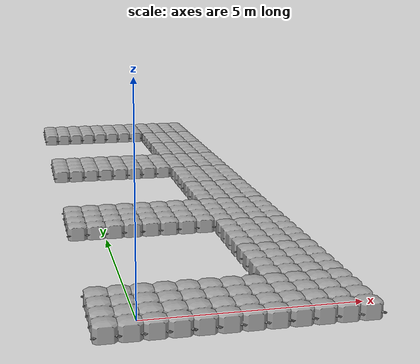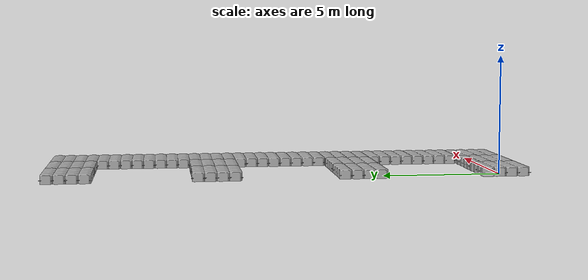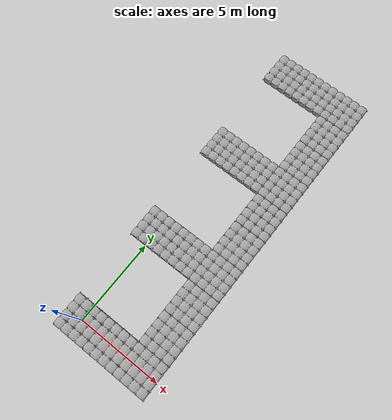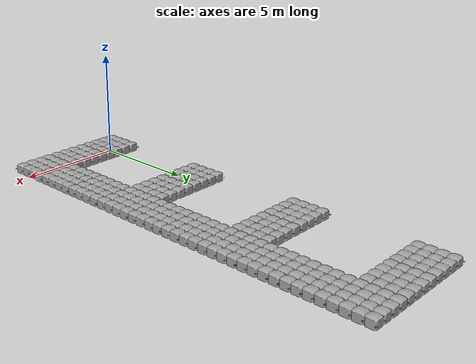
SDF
<?xml version="1.0" ?>
<sdf version="1.6">

  <!-- Important: This file is generated. DO NOT EDIT! -->

  <model name="robotx_dock_2016_base">
    <selfCollide>false</selfCollide>

    <!--
      This is how this dock should look like:

          X  X  X  X          X  X  X  X          XXXXXXXXXX
    -->

    <!-- Row 0 -->
    <include>
      <name>dock_block_0_0</name>
      <pose>0 0 0.25 0 0 0</pose>
        <uri>model://dock_block_4x4_dynamic</uri>
    </include>
    <include>
      <name>dock_block_0_3</name>
      <pose>0 6 0.25 0 0 0</pose>
        <uri>model://dock_block_4x4_dynamic</uri>
    </include>
    <include>
      <name>dock_block_0_6</name>
      <pose>0 12 0.25 0 0 0</pose>
        <uri>model://dock_block_4x4_dynamic</uri>
    </include>
    <include>
      <name>dock_block_0_9</name>
      <pose>0 18 0.25 0 0 0</pose>
        <uri>model://dock_block_4x4_dynamic</uri>
    </include>

    <!-- Row 1 -->
    <include>
      <name>dock_block_1_0</name>
      <pose>2 0 0.25 0 0 0</pose>
        <uri>model://dock_block_4x4_dynamic</uri>
    </include>
    <include>
      <name>dock_block_1_3</name>
      <pose>2 6 0.25 0 0 0</pose>
        <uri>model://dock_block_4x4_dynamic</uri>
    </include>
    <include>
      <name>dock_block_1_6</name>
      <pose>2 12 0.25 0 0 0</pose>
        <uri>model://dock_block_4x4_dynamic</uri>
    </include>
    <include>
      <name>dock_block_1_9</name>
      <pose>2 18 0.25 0 0 0</pose>
        <uri>model://dock_block_4x4_dynamic</uri>
    </include>

    <!-- Row 2 -->
    <include>
      <name>dock_block_2_0</name>
      <pose>4 0 0.25 0 0 0</pose>
        <uri>model://dock_block_4x4_dynamic</uri>
    </include>
    <include>
      <name>dock_block_2_1</name>
      <pose>4 2 0.25 0 0 0</pose>
        <uri>model://dock_block_4x4_dynamic</uri>
    </include>
    <include>
      <name>dock_block_2_2</name>
      <pose>4 4 0.25 0 0 0</pose>
        <uri>model://dock_block_4x4_dynamic</uri>
    </include>
    <include>
      <name>dock_block_2_3</name>
      <pose>4 6 0.25 0 0 0</pose>
        <uri>model://dock_block_4x4_dynamic</uri>
    </include>
    <include>
      <name>dock_block_2_4</name>
      <pose>4 8 0.25 0 0 0</pose>
        <uri>model://dock_block_4x4_dynamic</uri>
    </include>
    <include>
      <name>dock_block_2_5</name>
      <pose>4 10 0.25 0 0 0</pose>
        <uri>model://dock_block_4x4_dynamic</uri>
    </include>
    <include>
      <name>dock_block_2_6</name>
      <pose>4 12 0.25 0 0 0</pose>
        <uri>model://dock_block_4x4_dynamic</uri>
    </include>
    <include>
      <name>dock_block_2_7</name>
      <pose>4 14 0.25 0 0 0</pose>
        <uri>model://dock_block_4x4_dynamic</uri>
    </include>
    <include>
      <name>dock_block_2_8</name>
      <pose>4 16 0.25 0 0 0</pose>
        <uri>model://dock_block_4x4_dynamic</uri>
    </include>
    <include>
      <name>dock_block_2_9</name>
      <pose>4 18 0.25 0 0 0</pose>
        <uri>model://dock_block_4x4_dynamic</uri>
    </include>

    <!-- Add joints across rows -->

    <!-- Row 0 -->

    <!-- Row 1 -->

    <!-- Row 2 -->
    <joint name="2_0_to_2_1" type="revolute">
      <pose> 0  1.0 0 0 0 0</pose>
      <parent>dock_block_2_1::link</parent>
      <child>dock_block_2_0::link</child>
      <axis>
        <limit>
          <lower>-0.1</lower>
          <upper>0.1</upper>
        </limit>
        <xyz>1 0 0</xyz>
      </axis>
    </joint>
    <joint name="2_1_to_2_2" type="revolute">
      <pose> 0  1.0 0 0 0 0</pose>
      <parent>dock_block_2_2::link</parent>
      <child>dock_block_2_1::link</child>
      <axis>
        <limit>
          <lower>-0.1</lower>
          <upper>0.1</upper>
        </limit>
        <xyz>1 0 0</xyz>
      </axis>
    </joint>
    <joint name="2_2_to_2_3" type="revolute">
      <pose> 0  1.0 0 0 0 0</pose>
      <parent>dock_block_2_3::link</parent>
      <child>dock_block_2_2::link</child>
      <axis>
        <limit>
          <lower>-0.1</lower>
          <upper>0.1</upper>
        </limit>
        <xyz>1 0 0</xyz>
      </axis>
    </joint>
    <joint name="2_3_to_2_4" type="revolute">
      <pose> 0  1.0 0 0 0 0</pose>
      <parent>dock_block_2_4::link</parent>
      <child>dock_block_2_3::link</child>
      <axis>
        <limit>
          <lower>-0.1</lower>
          <upper>0.1</upper>
        </limit>
        <xyz>1 0 0</xyz>
      </axis>
    </joint>
    <joint name="2_4_to_2_5" type="revolute">
      <pose> 0  1.0 0 0 0 0</pose>
      <parent>dock_block_2_5::link</parent>
      <child>dock_block_2_4::link</child>
      <axis>
        <limit>
          <lower>-0.1</lower>
          <upper>0.1</upper>
        </limit>
        <xyz>1 0 0</xyz>
      </axis>
    </joint>
    <joint name="2_5_to_2_6" type="revolute">
      <pose> 0  1.0 0 0 0 0</pose>
      <parent>dock_block_2_6::link</parent>
      <child>dock_block_2_5::link</child>
      <axis>
        <limit>
          <lower>-0.1</lower>
          <upper>0.1</upper>
        </limit>
        <xyz>1 0 0</xyz>
      </axis>
    </joint>
    <joint name="2_6_to_2_7" type="revolute">
      <pose> 0  1.0 0 0 0 0</pose>
      <parent>dock_block_2_7::link</parent>
      <child>dock_block_2_6::link</child>
      <axis>
        <limit>
          <lower>-0.1</lower>
          <upper>0.1</upper>
        </limit>
        <xyz>1 0 0</xyz>
      </axis>
    </joint>
    <joint name="2_7_to_2_8" type="revolute">
      <pose> 0  1.0 0 0 0 0</pose>
      <parent>dock_block_2_8::link</parent>
      <child>dock_block_2_7::link</child>
      <axis>
        <limit>
          <lower>-0.1</lower>
          <upper>0.1</upper>
        </limit>
        <xyz>1 0 0</xyz>
      </axis>
    </joint>
    <joint name="2_8_to_2_9" type="revolute">
      <pose> 0  1.0 0 0 0 0</pose>
      <parent>dock_block_2_9::link</parent>
      <child>dock_block_2_8::link</child>
      <axis>
        <limit>
          <lower>-0.1</lower>
          <upper>0.1</upper>
        </limit>
        <xyz>1 0 0</xyz>
      </axis>
    </joint>

    <!-- Add joints across columns -->

    <!-- Column 0 -->
    <joint name="1_0_to_0_0" type="revolute">
      <pose> 1.0 0 0 0 0 0</pose>
      <parent>dock_block_1_0::link</parent>
      <child>dock_block_0_0::link</child>
      <axis>
        <limit>
          <lower>-0.1</lower>
          <upper>0.1</upper>
        </limit>
        <xyz>0 1 0</xyz>
      </axis>
    </joint>
    <joint name="2_0_to_1_0" type="revolute">
      <pose> 1.0 0 0 0 0 0</pose>
      <parent>dock_block_2_0::link</parent>
      <child>dock_block_1_0::link</child>
      <axis>
        <limit>
          <lower>-0.1</lower>
          <upper>0.1</upper>
        </limit>
        <xyz>0 1 0</xyz>
      </axis>
    </joint>

    <!-- Column 1 -->

    <!-- Column 2 -->

    <!-- Column 3 -->
    <joint name="1_3_to_0_3" type="revolute">
      <pose> 1.0 0 0 0 0 0</pose>
      <parent>dock_block_1_3::link</parent>
      <child>dock_block_0_3::link</child>
      <axis>
        <limit>
          <lower>-0.1</lower>
          <upper>0.1</upper>
        </limit>
        <xyz>0 1 0</xyz>
      </axis>
    </joint>
    <joint name="2_3_to_1_3" type="revolute">
      <pose> 1.0 0 0 0 0 0</pose>
      <parent>dock_block_2_3::link</parent>
      <child>dock_block_1_3::link</child>
      <axis>
        <limit>
          <lower>-0.1</lower>
          <upper>0.1</upper>
        </limit>
        <xyz>0 1 0</xyz>
      </axis>
    </joint>

    <!-- Column 4 -->

    <!-- Column 5 -->

    <!-- Column 6 -->
    <joint name="1_6_to_0_6" type="revolute">
      <pose> 1.0 0 0 0 0 0</pose>
      <parent>dock_block_1_6::link</parent>
      <child>dock_block_0_6::link</child>
      <axis>
        <limit>
          <lower>-0.1</lower>
          <upper>0.1</upper>
        </limit>
        <xyz>0 1 0</xyz>
      </axis>
    </joint>
    <joint name="2_6_to_1_6" type="revolute">
      <pose> 1.0 0 0 0 0 0</pose>
      <parent>dock_block_2_6::link</parent>
      <child>dock_block_1_6::link</child>
      <axis>
        <limit>
          <lower>-0.1</lower>
          <upper>0.1</upper>
        </limit>
        <xyz>0 1 0</xyz>
      </axis>
    </joint>

    <!-- Column 7 -->

    <!-- Column 8 -->

    <!-- Column 9 -->
    <joint name="1_9_to_0_9" type="revolute">
      <pose> 1.0 0 0 0 0 0</pose>
      <parent>dock_block_1_9::link</parent>
      <child>dock_block_0_9::link</child>
      <axis>
        <limit>
          <lower>-0.1</lower>
          <upper>0.1</upper>
        </limit>
        <xyz>0 1 0</xyz>
      </axis>
    </joint>
    <joint name="2_9_to_1_9" type="revolute">
      <pose> 1.0 0 0 0 0 0</pose>
      <parent>dock_block_2_9::link</parent>
      <child>dock_block_1_9::link</child>
      <axis>
        <limit>
          <lower>-0.1</lower>
          <upper>0.1</upper>
        </limit>
        <xyz>0 1 0</xyz>
      </axis>
    </joint>

  </model>
</sdf>

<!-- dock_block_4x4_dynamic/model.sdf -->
<sdf version="1.5">
  <model name="dock_block_4x4">
    <static>false</static>
    <link name="link">
      <velocity_decay>
        <linear>0.001</linear>
        <angular>0.001</angular>
      </velocity_decay>
       <inertial>
        <pose>0 0 0 0 0 0</pose>
        <mass>160</mass>
        <inertia>
          <ixx>55.467</ixx>
          <ixy>0</ixy>
          <ixz>0</ixz>
          <iyy>55.467</iyy>
          <iyz>0</iyz>
          <izz>106.67</izz>
        </inertia>
      </inertial>
      <collision name="collision">
        <pose>0 0 0 0 0 0</pose>
        <geometry>
          <box>
            <size>2 2 0.4</size>
          </box>
        </geometry>
      </collision>
      <visual name="visual">
        <pose>-0.25 0.25 0.2 0 0 0 </pose>
        <geometry>
          <mesh>
            <uri>file://dock_block_4x4/mesh/dock_block_4x4.dae</uri>
          </mesh>
        </geometry>
      </visual>
    </link>
    <plugin name="BuoyancyPlugin" filename="libbuoyancy_gazebo_plugin.so">
      <wave_model>ocean_waves</wave_model>
      <fluid_density>1000</fluid_density>
      <fluid_level>0</fluid_level>
      <linear_drag>1000.0</linear_drag>
      <angular_drag>200.0</angular_drag>
      <buoyancy name="buoyancy_base">
        <link_name>link</link_name>
      	<pose>0 0 0.35 0 0 0</pose>
        <geometry>
					<sphere>
            <radius>0.72557</radius>
          </sphere>
				</geometry>
      </buoyancy>
    </plugin>
  </model>
</sdf>
